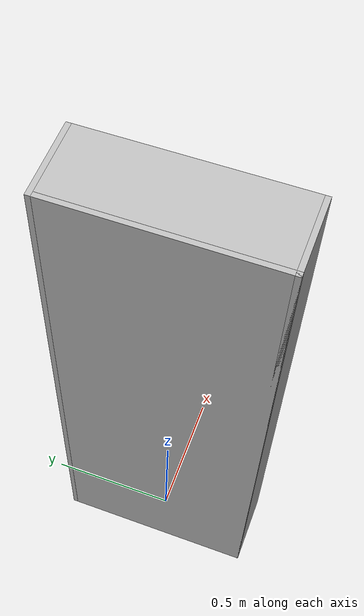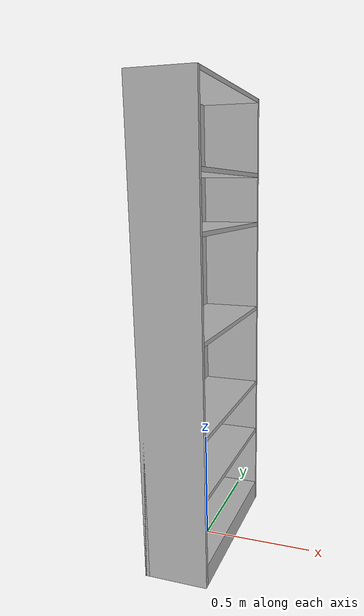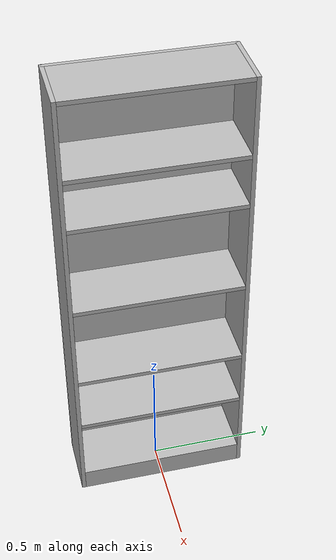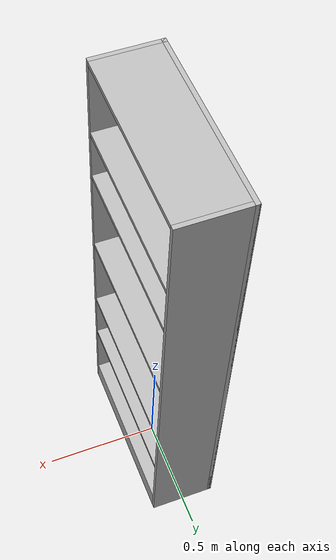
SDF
<?xml version="1.0"?>
<sdf version="1.6">
  <model name="rwc2017/cabinet_kitchen">
    <link name="1_link">
      <collision name="1_col">
        <geometry>
          <box>
            <size>0.28 0.018 2.02</size>
          </box>
        </geometry>
      </collision>
      <visual name="1_vis">
        <geometry>
          <box>
            <size>0.28 0.018 2.02</size>
          </box>
        </geometry>
      </visual>
      <pose>0 -0.371 1.01 0 0 0</pose>
    </link>
    <link name="2_link">
      <collision name="2_col">
        <geometry>
          <box>
            <size>0.28 0.018 2.02</size>
          </box>
        </geometry>
      </collision>
      <visual name="2_vis">
        <geometry>
          <box>
            <size>0.28 0.018 2.02</size>
          </box>
        </geometry>
      </visual>
      <pose>0 0.371 1.01 0 0 0</pose>
    </link>
    <link name="3_link">
      <collision name="3_col">
        <geometry>
          <box>
            <size>0.018 0.76 2.02</size>
          </box>
        </geometry>
      </collision>
      <visual name="3_vis">
        <geometry>
          <box>
            <size>0.018 0.76 2.02</size>
          </box>
        </geometry>
      </visual>
      <pose>-0.131 0 1.01 0 0 0</pose>
    </link>
    <link name="4_link">
      <collision name="4_col">
        <geometry>
          <box>
            <size>0.262 0.724 0.018</size>
          </box>
        </geometry>
      </collision>
      <visual name="4_vis">
        <geometry>
          <box>
            <size>0.262 0.724 0.018</size>
          </box>
        </geometry>
      </visual>
      <pose>0.009 0 2.011 0 0 0</pose>
    </link>
    <link name="5_link">
      <collision name="5_col">
        <geometry>
          <box>
            <size>0.262 0.724 0.098</size>
          </box>
        </geometry>
      </collision>
      <visual name="5_vis">
        <geometry>
          <box>
            <size>0.262 0.724 0.098</size>
          </box>
        </geometry>
      </visual>
      <pose>0.009 0 0.049 0 0 0</pose>
    </link>
    <link name="6_link">
      <collision name="6_col">
        <geometry>
          <box>
            <size>0.262 0.724 0.018</size>
          </box>
        </geometry>
      </collision>
      <visual name="6_vis">
        <geometry>
          <box>
            <size>0.262 0.724 0.018</size>
          </box>
        </geometry>
      </visual>
      <pose>0.009 0 0.399 0 0 0</pose>
    </link>
    <link name="7_link">
      <collision name="7_col">
        <geometry>
          <box>
            <size>0.262 0.724 0.018</size>
          </box>
        </geometry>
      </collision>
      <visual name="7_vis">
        <geometry>
          <box>
            <size>0.262 0.724 0.018</size>
          </box>
        </geometry>
      </visual>
      <pose>0.009 0 0.659 0 0 0</pose>
    </link>
    <link name="8_link">
      <collision name="8_col">
        <geometry>
          <box>
            <size>0.262 0.724 0.018</size>
          </box>
        </geometry>
      </collision>
      <visual name="8_vis">
        <geometry>
          <box>
            <size>0.262 0.724 0.018</size>
          </box>
        </geometry>
      </visual>
      <pose>0.009 0 1.049 0 0 0</pose>
    </link>
    <link name="9_link">
      <collision name="9_col">
        <geometry>
          <box>
            <size>0.262 0.724 0.018</size>
          </box>
        </geometry>
      </collision>
      <visual name="9_vis">
        <geometry>
          <box>
            <size>0.262 0.724 0.018</size>
          </box>
        </geometry>
      </visual>
      <pose>0.009 0 1.459 0 0 0</pose>
    </link>
    <link name="10_link">
      <collision name="10_col">
        <geometry>
          <box>
            <size>0.262 0.724 0.018</size>
          </box>
        </geometry>
      </collision>
      <visual name="10_vis">
        <geometry>
          <box>
            <size>0.262 0.724 0.018</size>
          </box>
        </geometry>
      </visual>
      <pose>0.009 0 1.684 0 0 0</pose>
    </link>
    <link name="in_front_of">
      <virtual_volume name="in_front_of_vv">
        <geometry>
          <box>
            <size>0.2 0.56 0.01</size>
          </box>
        </geometry>
        <pose>0.64 0.0 0.005 0 0 0</pose>
      </virtual_volume>
    </link>
    <link name="shelf1">
      <virtual_volume name="shelf1_vv">
        <geometry>
          <box>
            <size>0.222 0.664 0.242</size>
          </box>
        </geometry>
        <pose>0.019 0.0 0.239 0 0 0</pose>
      </virtual_volume>
    </link>
    <link name="shelf2">
      <virtual_volume name="shelf2_vv">
        <geometry>
          <box>
            <size>0.222 0.664 0.202</size>
          </box>
        </geometry>
        <pose>0.019 0.0 0.529 0 0 0</pose>
      </virtual_volume>
    </link>
    <link name="shelf3">
      <virtual_volume name="shelf3_vv">
        <geometry>
          <box>
            <size>0.222 0.664 0.25</size>
          </box>
        </geometry>
        <pose>0.019 0.0 0.813 0 0 0</pose>
      </virtual_volume>
    </link>
    <link name="shelf4">
      <virtual_volume name="shelf4_vv">
        <geometry>
          <box>
            <size>0.222 0.664 0.25</size>
          </box>
        </geometry>
        <pose>0.019 0.0 1.203 0 0 0</pose>
      </virtual_volume>
    </link>
    <link name="shelf5">
      <virtual_volume name="shelf5_vv">
        <geometry>
          <box>
            <size>0.222 0.664 0.162</size>
          </box>
        </geometry>
        <pose>0.019 0.0 1.569 0 0 0</pose>
      </virtual_volume>
    </link>
    <link name="shelf6">
      <virtual_volume name="shelf6_vv">
        <geometry>
          <box>
            <size>0.222 0.664 0.25</size>
          </box>
        </geometry>
        <pose>0.019 0.0 1.838 0 0 0</pose>
      </virtual_volume>
    </link>
    <static>true</static>
  </model>
</sdf>
